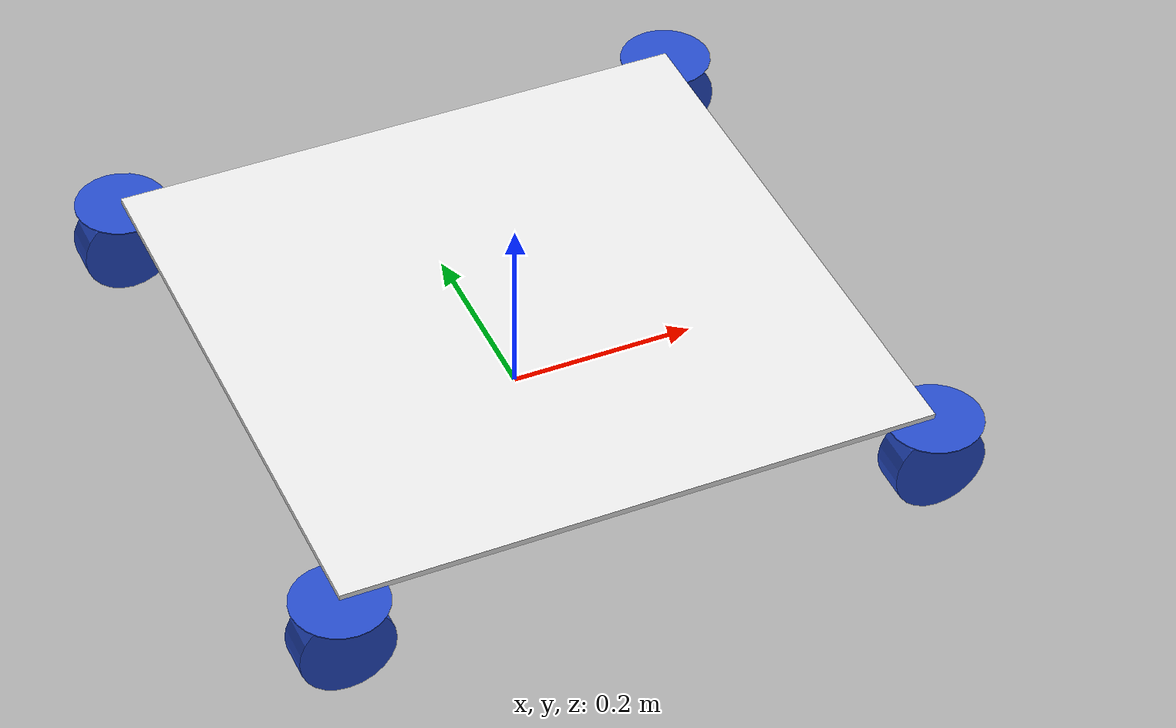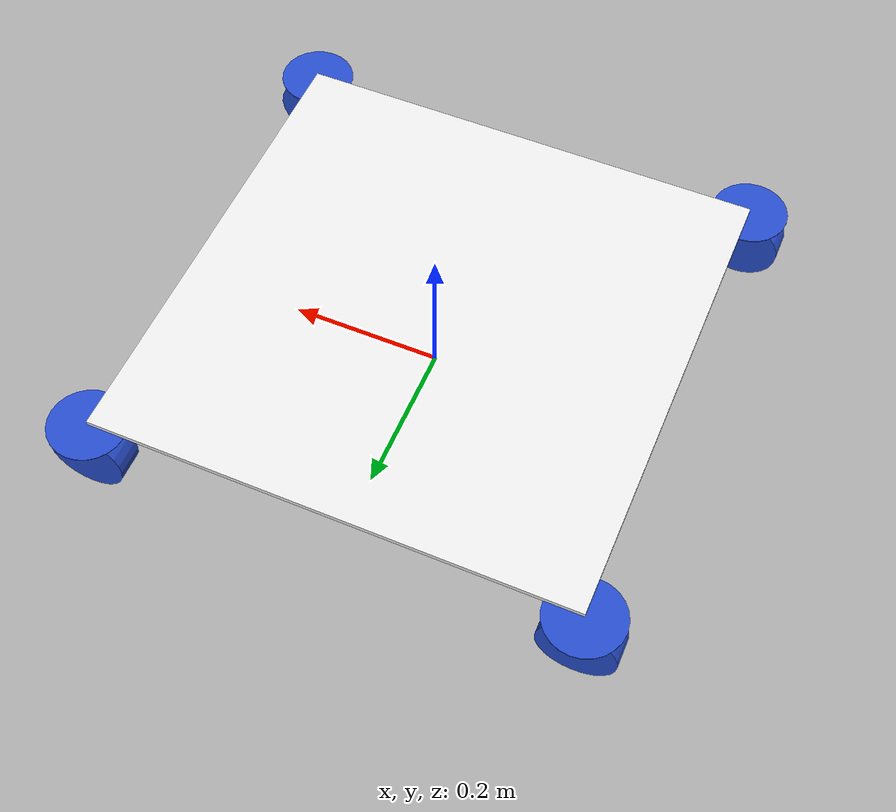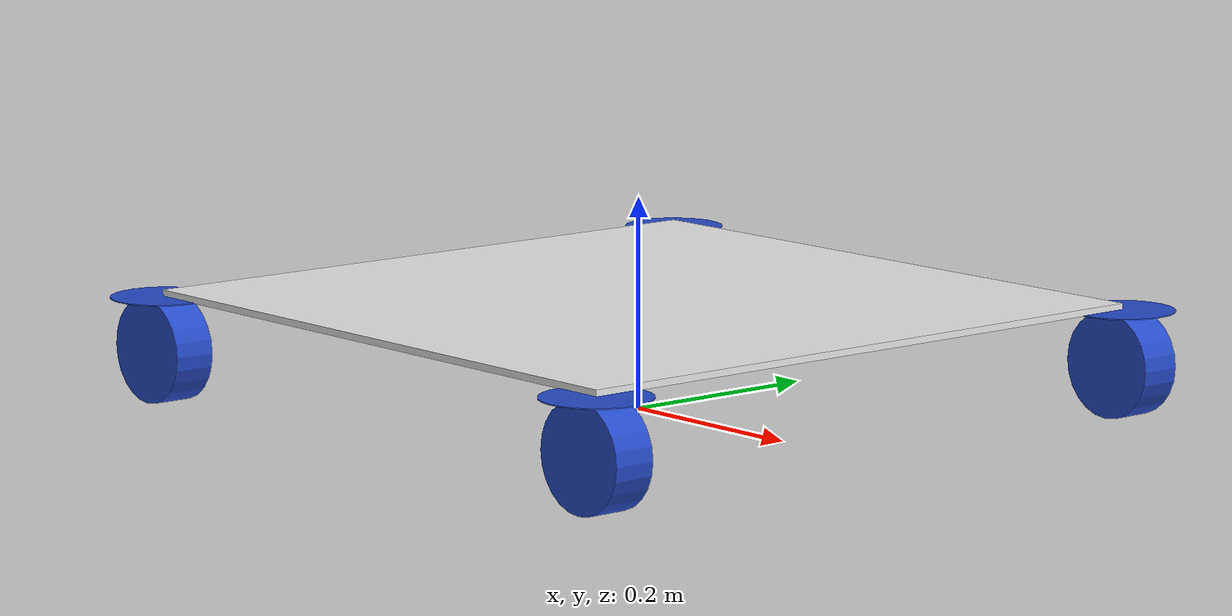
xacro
<?xml version="1.0"?>
<robot xmlns:xacro="http://www.ros.org/wiki/xacro">

    <!-- BASE LINK -->

    <link name="base_link">

    </link>

    <!-- CHASSIS LINK -->

    <joint name="chassis_joint" type="fixed">
        <parent link="base_link" />
        <child link="chassis" />
        <origin xyz="0 0 0.1" />
    </joint>

    <link name="chassis">
        <visual>
            <origin xyz="0 0 ${0.00635/2}" />
            <geometry>
                <box size="0.635 0.635 0.00635" />
            </geometry>
            <material name="white" />
        </visual>
        <collision>
            <origin xyz="0 0 ${0.00635/2}" />
            <geometry>
                <box size="0.635 0.635 0.00635" />
            </geometry>
        </collision>
        <xacro:inertial_box mass="0.5" x="0.635" y="0.635" z="0.00635">
            <origin xyz="0 0 0" rpy="0 0 0" />
        </xacro:inertial_box>
    </link>

    <xacro:macro name="swerve_wheel" params="prefix xyz">
        <link name="${prefix}_wheel_rotate">
            <visual>
                <geometry>
                    <cylinder radius="0.05" length="0.001" />
                </geometry>
                <origin rpy="0 0 0" />
                <material name="blue" />
            </visual>
            <collision>
                <geometry>
                    <cylinder radius="0.05" length="0.001" />
                </geometry>
                <origin rpy="0 0 0" />
            </collision>
            <xacro:inertial_cylinder mass="0.1" radius="0.05" length="0.001">
                <origin xyz="0 0 0" rpy="0 0 0" />
            </xacro:inertial_cylinder>
        </link>

        <joint name="${prefix}_wheel_rotate_joint" type="continuous">
            <parent link="chassis" />
            <child link="${prefix}_wheel_rotate" />
            <origin xyz="${xyz}" rpy="0 0 0" />
            <axis xyz="0 0 1" />
        </joint>

        <joint name="${prefix}_wheel_joint" type="continuous">
            <parent link="${prefix}_wheel_rotate" />
            <child link="${prefix}_wheel" />
            <origin xyz="0 0 -0.05" rpy="0 0 0" />
            <axis xyz="0 1 0" />
        </joint>

        <link name="${prefix}_wheel">
            <visual>
                <geometry>
                    <cylinder radius="0.05" length="0.04" />
                </geometry>
                <origin rpy="-${pi/2} 0 0" />
                <material name="blue" />
            </visual>
            <collision>
                <geometry>
                    <cylinder radius="0.05" length="0.04" />
                </geometry>
                <origin rpy="-${pi/2} 0 0" />
            </collision>
            <xacro:inertial_cylinder mass="0.1" radius="0.05" length="0.04">
                <origin xyz="0 0 0" rpy="0 0 0" />
            </xacro:inertial_cylinder>
        </link>
    </xacro:macro>

    <xacro:swerve_wheel prefix="front_left" xyz="0.3175 0.3175 0" />
    <xacro:swerve_wheel prefix="front_right" xyz="0.3175 -0.3175 0" />
    <xacro:swerve_wheel prefix="rear_left" xyz="-0.3175 0.3175 0" />
    <xacro:swerve_wheel prefix="rear_right" xyz="-0.3175 -0.3175 0" />

    <xacro:include filename="$(find daybreak_robot)/description/ros2_control_drivetrain.xacro" />
</robot>
